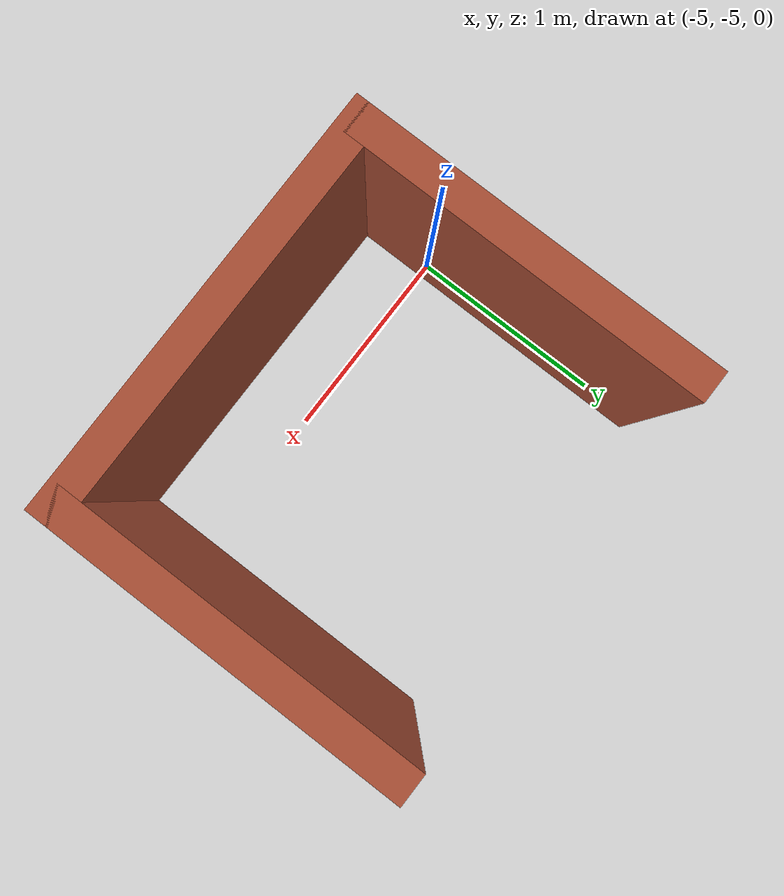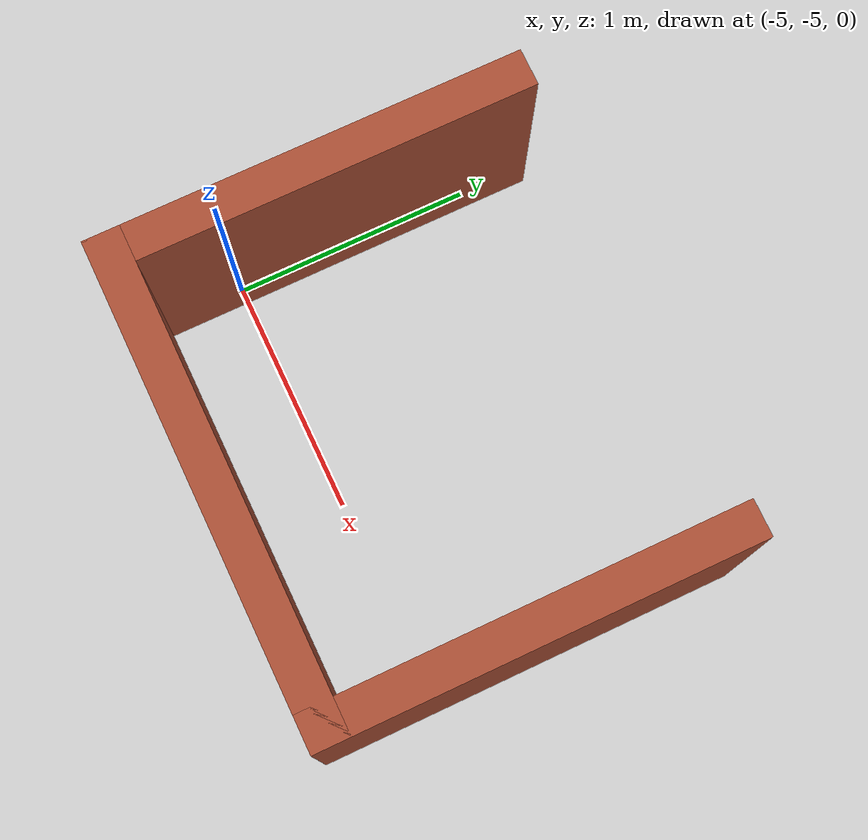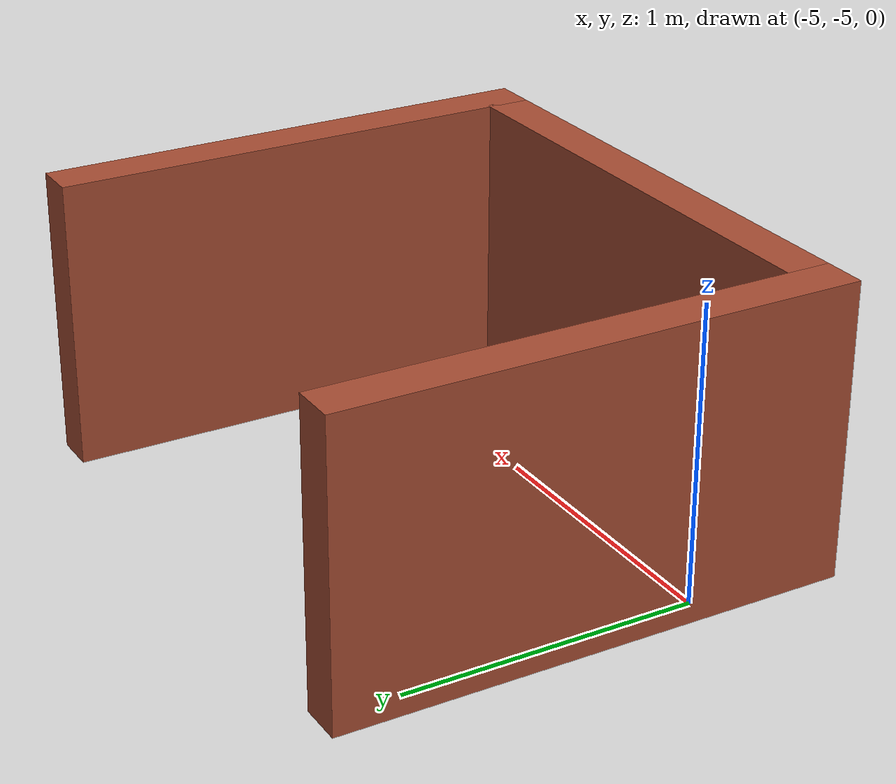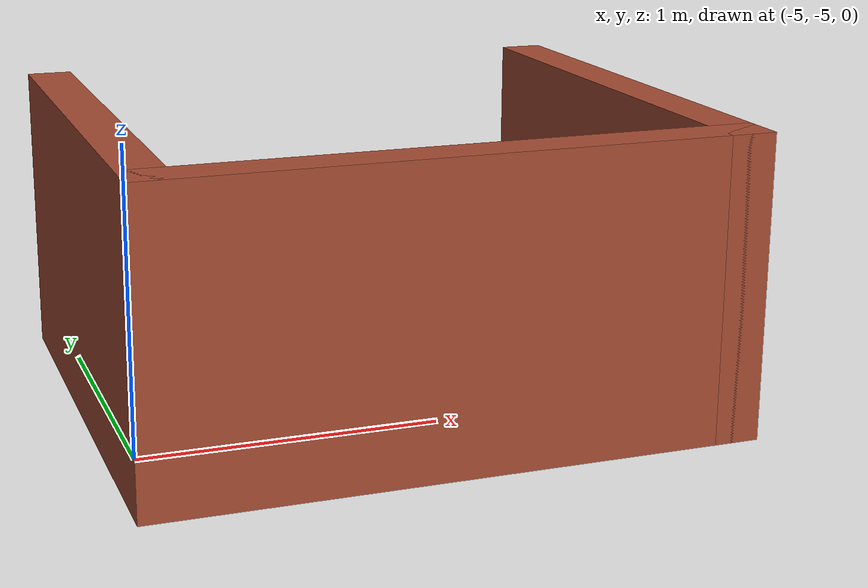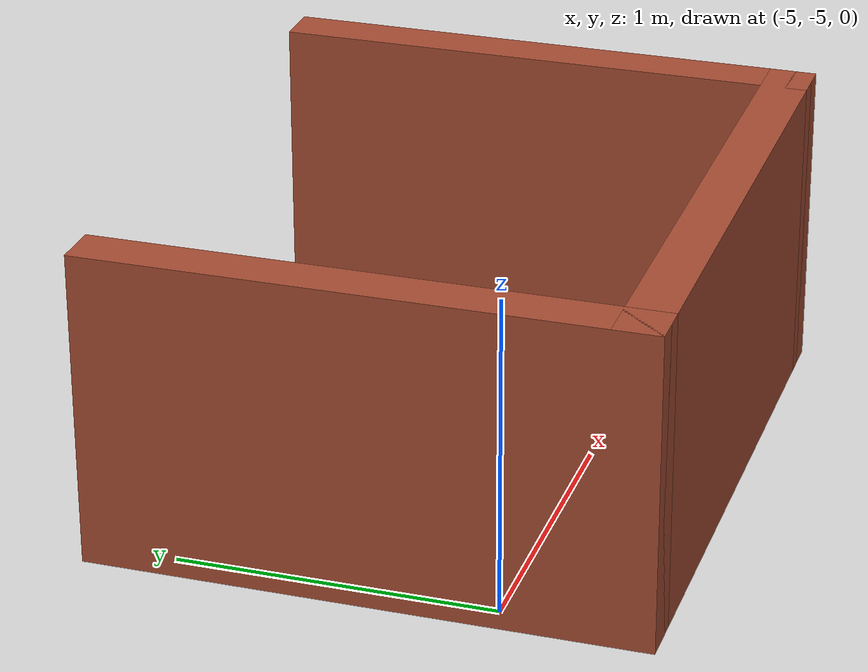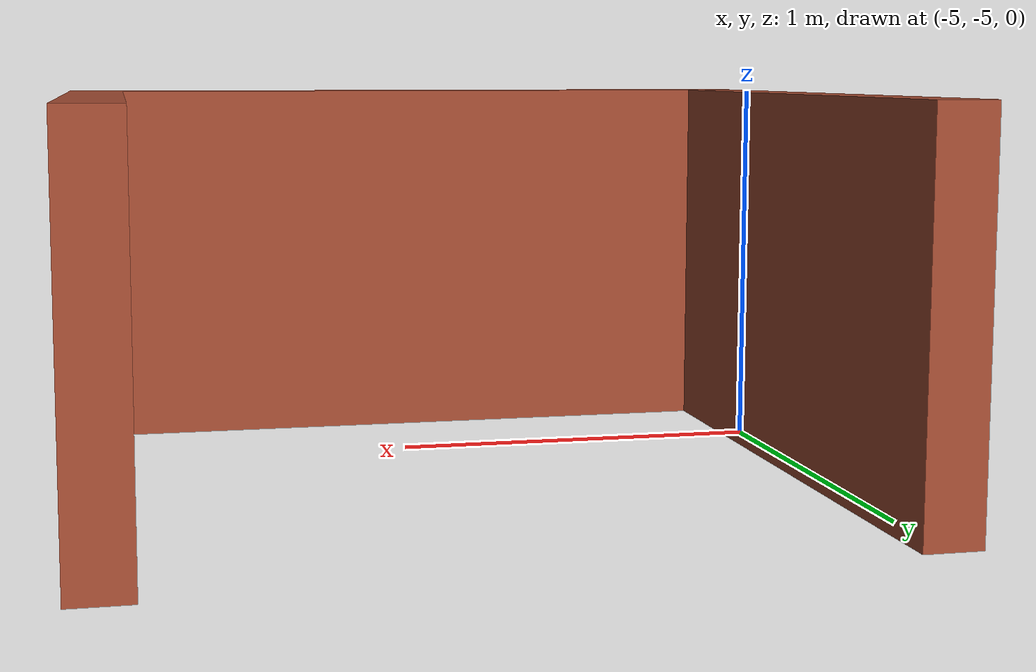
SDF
<?xml version='1.0'?>
<sdf version='1.7'>
  <model name='extra'>
    <pose>-2.5455 -2.7425 0 0 -0 0</pose>
    <link name='Wall_6'>
      <collision name='Wall_6_Collision'>
        <geometry>
          <box>
            <size>1.75 0.15 1</size>
          </box>
        </geometry>
        <pose>0 0 0.5 0 -0 0</pose>
      </collision>
      <visual name='Wall_6_Visual'>
        <pose>0 0 0.5 0 -0 0</pose>
        <geometry>
          <box>
            <size>1.75 0.15 1</size>
          </box>
        </geometry>
        <material>
          <script>
            <uri>file://media/materials/scripts/gazebo.material</uri>
            <name>Gazebo/Bricks</name>
          </script>
          <ambient>1 1 1 1</ambient>
        </material>
        <meta>
          <layer>0</layer>
        </meta>
      </visual>
      <pose>-2.4705 -1.8675 0 0 -0 -1.5708</pose>
    </link>
    <link name='Wall_7'>
      <collision name='Wall_7_Collision'>
        <geometry>
          <box>
            <size>2 0.15 1</size>
          </box>
        </geometry>
        <pose>0 0 0.5 0 -0 0</pose>
      </collision>
      <visual name='Wall_7_Visual'>
        <pose>0 0 0.5 0 -0 0</pose>
        <geometry>
          <box>
            <size>2 0.15 1</size>
          </box>
        </geometry>
        <material>
          <script>
            <uri>file://media/materials/scripts/gazebo.material</uri>
            <name>Gazebo/Bricks</name>
          </script>
          <ambient>1 1 1 1</ambient>
        </material>
        <meta>
          <layer>0</layer>
        </meta>
      </visual>
      <pose>-1.5455 -2.6675 0 0 -0 0</pose>
    </link>
    <link name='Wall_8'>
      <collision name='Wall_8_Collision'>
        <geometry>
          <box>
            <size>1.75 0.15 1</size>
          </box>
        </geometry>
        <pose>0 0 0.5 0 -0 0</pose>
      </collision>
      <visual name='Wall_8_Visual'>
        <pose>0 0 0.5 0 -0 0</pose>
        <geometry>
          <box>
            <size>1.75 0.15 1</size>
          </box>
        </geometry>
        <material>
          <script>
            <uri>file://media/materials/scripts/gazebo.material</uri>
            <name>Gazebo/Bricks</name>
          </script>
          <ambient>1 1 1 1</ambient>
        </material>
        <meta>
          <layer>0</layer>
        </meta>
      </visual>
      <pose>-0.6205 -1.8675 0 0 -0 1.5708</pose>
    </link>
    <static>1</static>
  </model>
</sdf>
